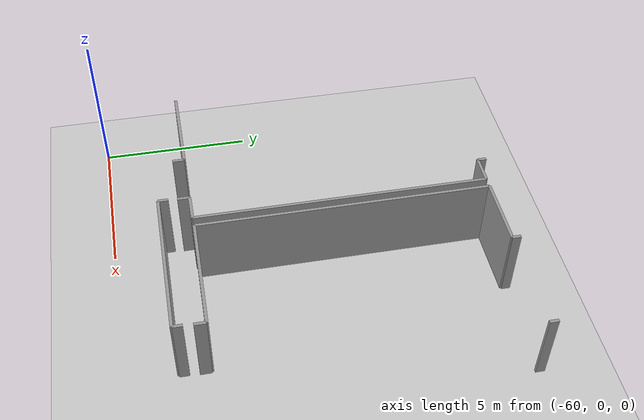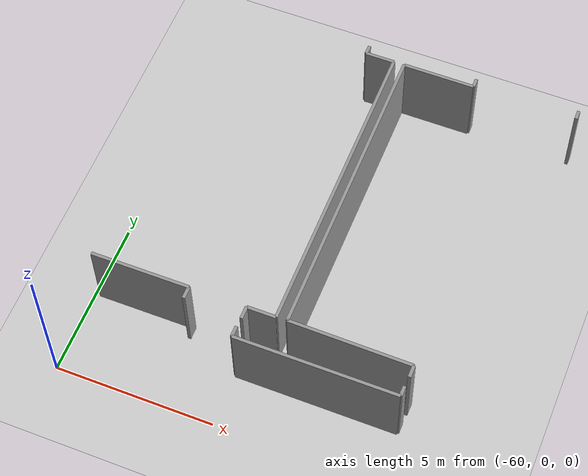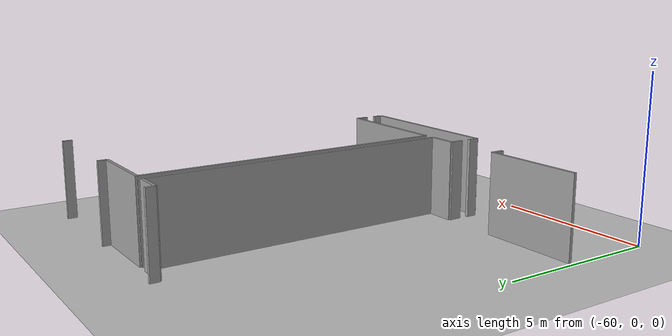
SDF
<sdf version="1.6">
 <world name="default">
  <model name="ground_plane">
   <static>1</static>
   <link name="link">
    <collision name="collision">
     <geometry><plane><normal>0 0 1</normal><size>100 100</size></plane></geometry>
     <surface><friction><ode><mu>100</mu><mu2>50</mu2></ode></friction></surface>
    </collision>
    <visual name="visual">
     <cast_shadows>0</cast_shadows>
     <geometry><plane><normal>0 0 1</normal><size>100 100</size></plane></geometry>
     <material>
      <script><uri>file://media/materials/scripts/gazebo.material</uri><name>Gazebo/Grey</name></script>
     </material>
    </visual>
   </link>
  </model>
  <model name="0510032198_A_40_1_106">
   <static>1</static>
   <link name="Wall_15">
    <collision name="Wall_15_Collision">
     <geometry><box><size>0.287641819868 0.1 2.5</size></box></geometry>
     <pose>0.143820909934 0 1.25 0 0 0</pose>
    </collision>
    <visual name="Wall_15_Visual">
     <pose>0.143820909934 0 1.25 0 0 0</pose>
     <geometry><box><size>0.287641819868 0.1 2.5</size></box></geometry>
     <material>
      <script><uri>file://media/materials/scripts/gazebo.material</uri><name>Gazebo/Grey</name></script>
      <ambient>1 1 1 1</ambient>
     </material>
    </visual>
    <pose>12.6014814062 -0.0218526470925 0 0 0 -1.57079632679</pose>
   </link>
   <link name="Wall_16">
    <collision name="Wall_16_Collision">
     <geometry><box><size>0.91704887624 0.1 2.5</size></box></geometry>
     <pose>0.45852443812 0 1.25 0 0 0</pose>
    </collision>
    <visual name="Wall_16_Visual">
     <pose>0.45852443812 0 1.25 0 0 0</pose>
     <geometry><box><size>0.91704887624 0.1 2.5</size></box></geometry>
     <material>
      <script><uri>file://media/materials/scripts/gazebo.material</uri><name>Gazebo/Grey</name></script>
      <ambient>1 1 1 1</ambient>
     </material>
    </visual>
    <pose>12.6014814062 -0.309494466961 0 0 0 0.0</pose>
   </link>
   <link name="Wall_17">
    <collision name="Wall_17_Collision">
     <geometry><box><size>9.65569375802 0.1 2.5</size></box></geometry>
     <pose>4.82784687901 0 1.25 0 0 0</pose>
    </collision>
    <visual name="Wall_17_Visual">
     <pose>4.82784687901 0 1.25 0 0 0</pose>
     <geometry><box><size>9.65569375802 0.1 2.5</size></box></geometry>
     <material>
      <script><uri>file://media/materials/scripts/gazebo.material</uri><name>Gazebo/Grey</name></script>
      <ambient>1 1 1 1</ambient>
     </material>
    </visual>
    <pose>13.5185302824 -0.309494466961 0 0 0 -1.57079632679</pose>
   </link>
   <link name="Wall_18">
    <collision name="Wall_18_Collision">
     <geometry><box><size>0.90231104448 0.1 2.5</size></box></geometry>
     <pose>0.45115552224 0 1.25 0 0 0</pose>
    </collision>
    <visual name="Wall_18_Visual">
     <pose>0.45115552224 0 1.25 0 0 0</pose>
     <geometry><box><size>0.90231104448 0.1 2.5</size></box></geometry>
     <material>
      <script><uri>file://media/materials/scripts/gazebo.material</uri><name>Gazebo/Grey</name></script>
      <ambient>1 1 1 1</ambient>
     </material>
    </visual>
    <pose>13.5185302824 -9.96518822498 0 0 0 3.14159265359</pose>
   </link>
   <link name="Wall_19">
    <collision name="Wall_19_Collision">
     <geometry><box><size>0.397921457521 0.1 2.5</size></box></geometry>
     <pose>0.19896072876 0 1.25 0 0 0</pose>
    </collision>
    <visual name="Wall_19_Visual">
     <pose>0.19896072876 0 1.25 0 0 0</pose>
     <geometry><box><size>0.397921457521 0.1 2.5</size></box></geometry>
     <material>
      <script><uri>file://media/materials/scripts/gazebo.material</uri><name>Gazebo/Grey</name></script>
      <ambient>1 1 1 1</ambient>
     </material>
    </visual>
    <pose>12.616219238 -9.96518822498 0 0 0 -1.57079632679</pose>
   </link>
   <link name="Wall_20">
    <collision name="Wall_20_Collision">
     <geometry><box><size>0.391568943831 0.1 2.5</size></box></geometry>
     <pose>0.195784471916 0 1.25 0 0 0</pose>
    </collision>
    <visual name="Wall_20_Visual">
     <pose>0.195784471916 0 1.25 0 0 0</pose>
     <geometry><box><size>0.391568943831 0.1 2.5</size></box></geometry>
     <material>
      <script><uri>file://media/materials/scripts/gazebo.material</uri><name>Gazebo/Grey</name></script>
      <ambient>1 1 1 1</ambient>
     </material>
    </visual>
    <pose>10.8348473491 -10.3631096825 0 0 0 1.57079632679</pose>
   </link>
   <link name="Wall_21">
    <collision name="Wall_21_Collision">
     <geometry><box><size>3.08885253006 0.1 2.5</size></box></geometry>
     <pose>1.54442626503 0 1.25 0 0 0</pose>
    </collision>
    <visual name="Wall_21_Visual">
     <pose>1.54442626503 0 1.25 0 0 0</pose>
     <geometry><box><size>3.08885253006 0.1 2.5</size></box></geometry>
     <material>
      <script><uri>file://media/materials/scripts/gazebo.material</uri><name>Gazebo/Grey</name></script>
      <ambient>1 1 1 1</ambient>
     </material>
    </visual>
    <pose>10.8348473491 -9.97154073867 0 0 0 -3.13957719071</pose>
   </link>
   <link name="Wall_22">
    <collision name="Wall_22_Collision">
     <geometry><box><size>9.63943132297 0.1 2.5</size></box></geometry>
     <pose>4.81971566149 0 1.25 0 0 0</pose>
    </collision>
    <visual name="Wall_22_Visual">
     <pose>4.81971566149 0 1.25 0 0 0</pose>
     <geometry><box><size>9.63943132297 0.1 2.5</size></box></geometry>
     <material>
      <script><uri>file://media/materials/scripts/gazebo.material</uri><name>Gazebo/Grey</name></script>
      <ambient>1 1 1 1</ambient>
     </material>
    </visual>
    <pose>13.8533077539 -9.94460608063 0 0 0 1.57079632679</pose>
   </link>
   <link name="Wall_23">
    <collision name="Wall_23_Collision">
     <geometry><box><size>2.27369169981 0.1 2.5</size></box></geometry>
     <pose>1.1368458499 0 1.25 0 0 0</pose>
    </collision>
    <visual name="Wall_23_Visual">
     <pose>1.1368458499 0 1.25 0 0 0</pose>
     <geometry><box><size>2.27369169981 0.1 2.5</size></box></geometry>
     <material>
      <script><uri>file://media/materials/scripts/gazebo.material</uri><name>Gazebo/Grey</name></script>
      <ambient>1 1 1 1</ambient>
     </material>
    </visual>
    <pose>13.8533077539 -0.305174757652 0 0 0 0.0</pose>
   </link>
   <link name="Wall_24">
    <collision name="Wall_24_Collision">
     <geometry><box><size>0.290563976165 0.1 2.5</size></box></geometry>
     <pose>0.145281988083 0 1.25 0 0 0</pose>
    </collision>
    <visual name="Wall_24_Visual">
     <pose>0.145281988083 0 1.25 0 0 0</pose>
     <geometry><box><size>0.290563976165 0.1 2.5</size></box></geometry>
     <material>
      <script><uri>file://media/materials/scripts/gazebo.material</uri><name>Gazebo/Grey</name></script>
      <ambient>1 1 1 1</ambient>
     </material>
    </visual>
    <pose>16.1269994537 -0.305174757652 0 0 0 1.57079632679</pose>
   </link>
   <link name="Wall_25">
    <collision name="Wall_25_Collision">
     <geometry><box><size>0.296281238486 0.1 2.5</size></box></geometry>
     <pose>0.148140619243 0 1.25 0 0 0</pose>
    </collision>
    <visual name="Wall_25_Visual">
     <pose>0.148140619243 0 1.25 0 0 0</pose>
     <geometry><box><size>0.296281238486 0.1 2.5</size></box></geometry>
     <material>
      <script><uri>file://media/materials/scripts/gazebo.material</uri><name>Gazebo/Grey</name></script>
      <ambient>1 1 1 1</ambient>
     </material>
    </visual>
    <pose>19.4164580925 -0.0146107814862 0 0 0 -1.57079632679</pose>
   </link>
   <link name="Wall_30">
    <collision name="Wall_30_Collision">
     <geometry><box><size>0.381531972201 0.1 2.5</size></box></geometry>
     <pose>0.190765986101 0 1.25 0 0 0</pose>
    </collision>
    <visual name="Wall_30_Visual">
     <pose>0.190765986101 0 1.25 0 0 0</pose>
     <geometry><box><size>0.381531972201 0.1 2.5</size></box></geometry>
     <material>
      <script><uri>file://media/materials/scripts/gazebo.material</uri><name>Gazebo/Grey</name></script>
      <ambient>1 1 1 1</ambient>
     </material>
    </visual>
    <pose>17.6681192748 -10.3592981743 0 0 0 1.57079632679</pose>
   </link>
   <link name="Wall_31">
    <collision name="Wall_31_Collision">
     <geometry><box><size>3.81495563982 0.1 2.5</size></box></geometry>
     <pose>1.90747781991 0 1.25 0 0 0</pose>
    </collision>
    <visual name="Wall_31_Visual">
     <pose>1.90747781991 0 1.25 0 0 0</pose>
     <geometry><box><size>3.81495563982 0.1 2.5</size></box></geometry>
     <material>
      <script><uri>file://media/materials/scripts/gazebo.material</uri><name>Gazebo/Grey</name></script>
      <ambient>1 1 1 1</ambient>
     </material>
    </visual>
    <pose>17.6681192748 -9.97776620209 0 0 0 3.13290040598</pose>
   </link>
   <link name="Wall_315">
    <collision name="Wall_315_Collision">
     <geometry><box><size>0.335285672541 0.1 2.5</size></box></geometry>
     <pose>0.16764283627 0 1.25 0 0 0</pose>
    </collision>
    <visual name="Wall_315_Visual">
     <pose>0.16764283627 0 1.25 0 0 0</pose>
     <geometry><box><size>0.335285672541 0.1 2.5</size></box></geometry>
     <material>
      <script><uri>file://media/materials/scripts/gazebo.material</uri><name>Gazebo/Grey</name></script>
      <ambient>1 1 1 1</ambient>
     </material>
    </visual>
    <pose>12.5919526357 -10.6492268991 0 0 0 -1.57079632679</pose>
   </link>
   <link name="Wall_316">
    <collision name="Wall_316_Collision">
     <geometry><box><size>5.04948608164 0.1 2.5</size></box></geometry>
     <pose>2.52474304082 0 1.25 0 0 0</pose>
    </collision>
    <visual name="Wall_316_Visual">
     <pose>2.52474304082 0 1.25 0 0 0</pose>
     <geometry><box><size>5.04948608164 0.1 2.5</size></box></geometry>
     <material>
      <script><uri>file://media/materials/scripts/gazebo.material</uri><name>Gazebo/Grey</name></script>
      <ambient>1 1 1 1</ambient>
     </material>
    </visual>
    <pose>12.5919526357 -10.9845125716 0 0 0 0.0</pose>
   </link>
   <link name="Wall_317">
    <collision name="Wall_317_Collision">
     <geometry><box><size>0.323088846256 0.1 2.5</size></box></geometry>
     <pose>0.161544423128 0 1.25 0 0 0</pose>
    </collision>
    <visual name="Wall_317_Visual">
     <pose>0.161544423128 0 1.25 0 0 0</pose>
     <geometry><box><size>0.323088846256 0.1 2.5</size></box></geometry>
     <material>
      <script><uri>file://media/materials/scripts/gazebo.material</uri><name>Gazebo/Grey</name></script>
      <ambient>1 1 1 1</ambient>
     </material>
    </visual>
    <pose>17.6414387173 -10.9845125716 0 0 0 1.57079632679</pose>
   </link>
   <pose>-67.6 12.6852799553 0 0 0 0</pose>
  </model>
 </world>
</sdf>
